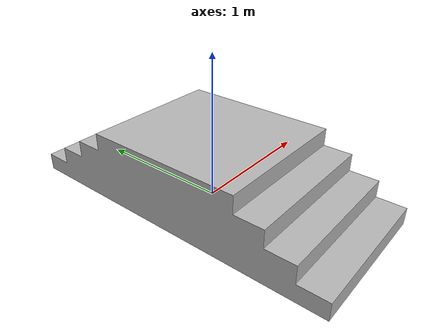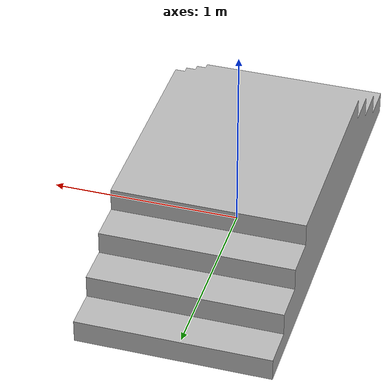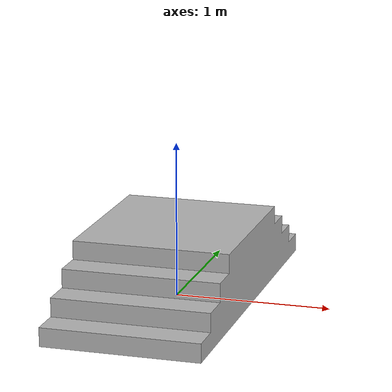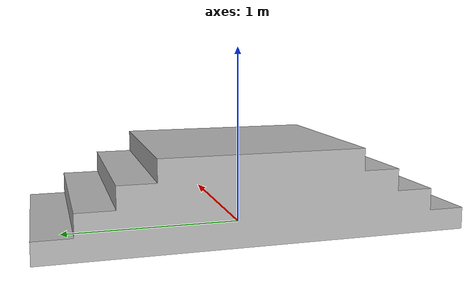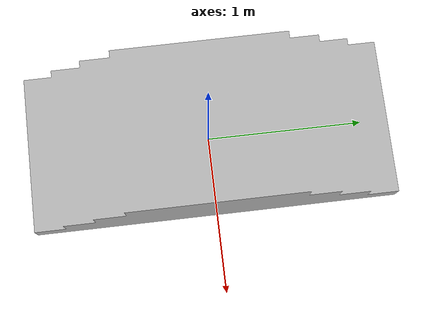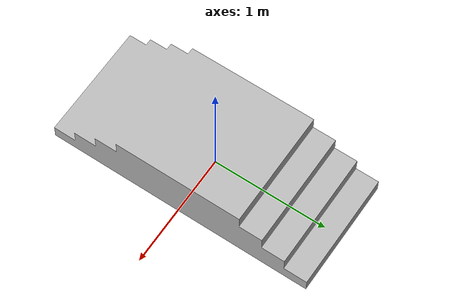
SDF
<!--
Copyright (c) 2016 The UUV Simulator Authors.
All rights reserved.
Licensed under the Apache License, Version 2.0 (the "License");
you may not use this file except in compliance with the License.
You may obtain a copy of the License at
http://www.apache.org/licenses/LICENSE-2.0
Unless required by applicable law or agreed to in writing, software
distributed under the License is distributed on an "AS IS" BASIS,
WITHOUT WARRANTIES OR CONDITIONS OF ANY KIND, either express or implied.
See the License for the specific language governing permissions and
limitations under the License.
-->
<?xml version="1.0" ?>
<sdf version="1.5">

<model name="map">
    <static>true</static>
        <link name="map_link">
        <visual name="map">
            <cast_shadows>false</cast_shadows>
            <pose>0 0 0.0 0 0 0</pose>
            <geometry>
                <mesh><uri>model://example/meshes/map.obj</uri><scale>1 1 1</scale></mesh>
            </geometry>
        </visual>
        <collision name="map">
            <pose>0 0 0.0 0 0 0</pose>
            <geometry>
                <mesh><uri>model://example/meshes/map.obj</uri><scale>1 1 1</scale></mesh>
            </geometry>
        </collision>
    </link>
</model>

</sdf>
